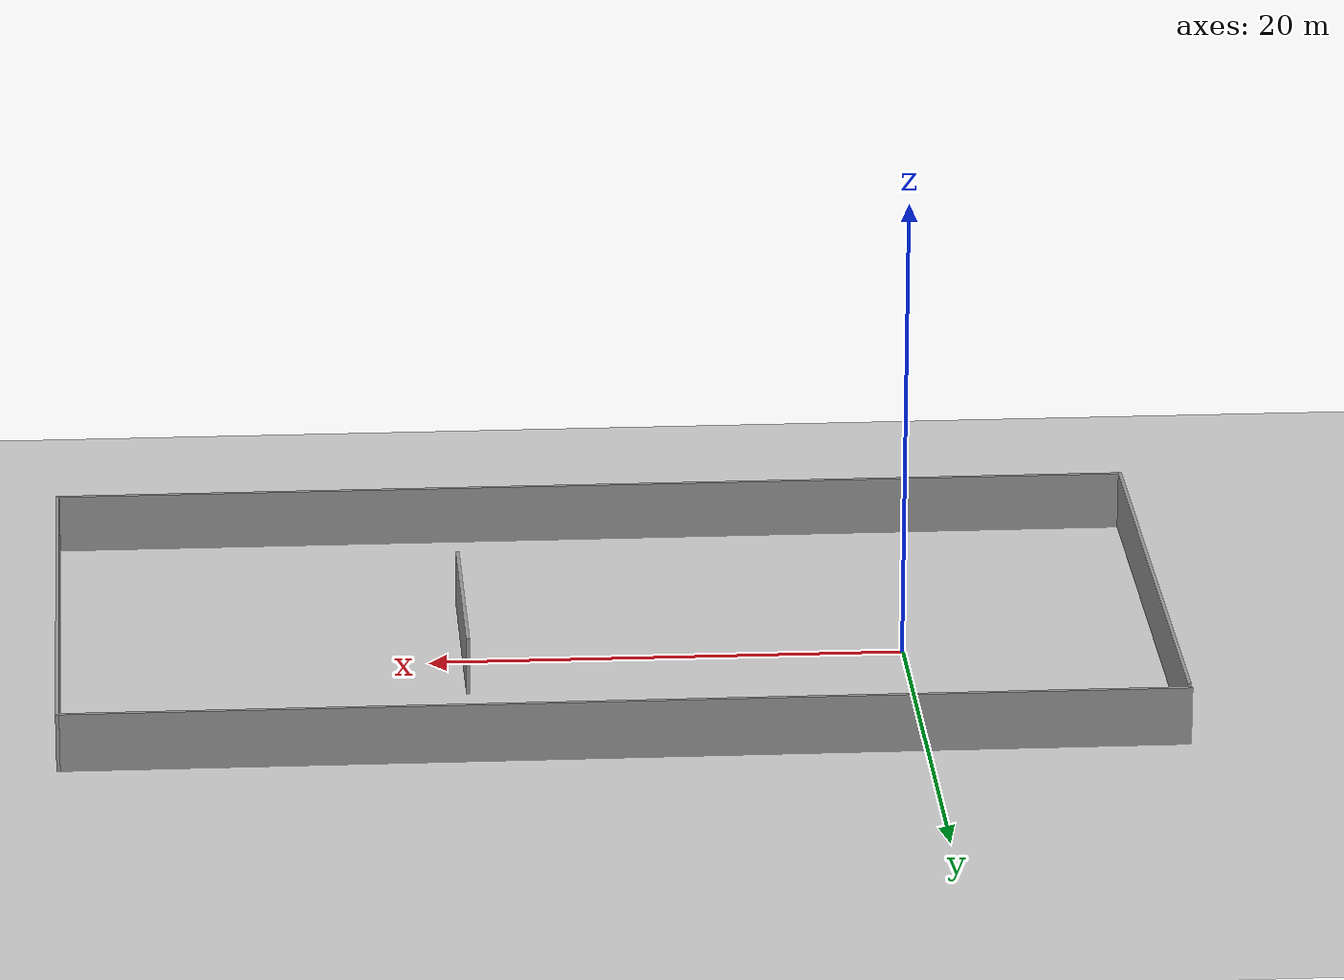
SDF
<sdf version="1.6">
 <world name="default">
  <light name="sun" type="directional">
   <pose>0 0 10 0 -0 0</pose>
   <diffuse>0.8 0.8 0.8 1</diffuse>
   <specular>0.1 0.1 0.1 1</specular>
   <attenuation>
    <range>1000</range>
    <constant>0.9</constant>
    <linear>0.01</linear>
    <quadratic>0.001</quadratic>
   </attenuation>
   <direction>-0.5 0.5 -1</direction>
  </light>
  <model name="ground_plane">
   <static>1</static>
   <link name="link">
    <collision name="collision">
     <geometry><plane><normal>0 0 1</normal><size>100 100</size></plane></geometry>
     <surface><friction><ode><mu>100</mu><mu2>50</mu2></ode></friction></surface>
    </collision>
    <visual name="visual">
     <cast_shadows>0</cast_shadows>
     <geometry><plane><normal>0 0 1</normal><size>100 100</size></plane></geometry>
     <material>
      <script><uri>file://media/materials/scripts/gazebo.material</uri><name>Gazebo/Grey</name></script>
     </material>
    </visual>
   </link>
  </model>
  <gravity>0 0 -9.8</gravity>
  <magnetic_field>6e-06 2.3e-05 -4.2e-05</magnetic_field>
  <atmosphere type="adiabatic"/>
  <physics name="default_physics" default="0" type="ode">
   <max_step_size>0.001</max_step_size>
   <real_time_factor>1</real_time_factor>
   <real_time_update_rate>1000</real_time_update_rate>
  </physics>
  <scene><ambient>0.4 0.4 0.4 1</ambient><background>0.7 0.7 0.7 1</background><shadows>1</shadows></scene>
  <spherical_coordinates>
   <surface_model>EARTH_WGS84</surface_model>
   <latitude_deg>0</latitude_deg>
   <longitude_deg>0</longitude_deg>
   <elevation>0</elevation>
   <heading_deg>0</heading_deg>
  </spherical_coordinates>
  <model name="samll_room">
   <pose>12.384 -1.68766 0 0 -0 0</pose>
   <link name="Wall_0">
    <collision name="Wall_0_Collision">
     <geometry><box><size>24 0.15 2.5</size></box></geometry>
     <pose>0 0 1.25 0 -0 0</pose>
    </collision>
    <visual name="Wall_0_Visual">
     <pose>0 0 1.25 0 -0 0</pose>
     <geometry><box><size>24 0.15 2.5</size></box></geometry>
     <material>
      <script><uri>file://media/materials/scripts/gazebo.material</uri><name>Gazebo/Grey</name></script>
      <ambient>1 1 1 1</ambient>
     </material>
    </visual>
    <pose>-23.175 -0.25 0 0 0 -1.5708</pose>
   </link>
   <link name="Wall_1">
    <collision name="Wall_1_Collision">
     <geometry><box><size>46.5 0.15 2.5</size></box></geometry>
     <pose>0 0 1.25 0 -0 0</pose>
    </collision>
    <visual name="Wall_1_Visual">
     <pose>0 0 1.25 0 -0 0</pose>
     <geometry><box><size>46.5 0.15 2.5</size></box></geometry>
     <material>
      <script><uri>file://media/materials/scripts/gazebo.material</uri><name>Gazebo/Grey</name></script>
      <ambient>1 1 1 1</ambient>
     </material>
    </visual>
    <pose>0 -12.175 0 0 -0 0</pose>
   </link>
   <link name="Wall_2">
    <collision name="Wall_2_Collision">
     <geometry><box><size>24.5 0.15 2.5</size></box></geometry>
     <pose>0 0 1.25 0 -0 0</pose>
    </collision>
    <visual name="Wall_2_Visual">
     <pose>0 0 1.25 0 -0 0</pose>
     <geometry><box><size>24.5 0.15 2.5</size></box></geometry>
     <material>
      <script><uri>file://media/materials/scripts/gazebo.material</uri><name>Gazebo/Grey</name></script>
      <ambient>1 1 1 1</ambient>
     </material>
    </visual>
    <pose>23.175 0 0 0 -0 1.5708</pose>
   </link>
   <link name="Wall_3">
    <collision name="Wall_3_Collision">
     <geometry><box><size>46.5 0.15 2.5</size></box></geometry>
     <pose>0 0 1.25 0 -0 0</pose>
    </collision>
    <visual name="Wall_3_Visual">
     <pose>0 0 1.25 0 -0 0</pose>
     <geometry><box><size>46.5 0.15 2.5</size></box></geometry>
     <material>
      <script><uri>file://media/materials/scripts/gazebo.material</uri><name>Gazebo/Grey</name></script>
      <ambient>1 1 1 1</ambient>
     </material>
    </visual>
    <pose>0 12.175 0 0 -0 3.14159</pose>
   </link>
   <link name="Wall_9">
    <collision name="Wall_9_Collision">
     <geometry><box><size>9.75 0.15 2.5</size></box></geometry>
     <pose>0 0 1.25 0 -0 0</pose>
    </collision>
    <visual name="Wall_9_Visual">
     <pose>0 0 1.25 0 -0 0</pose>
     <geometry><box><size>9.75 0.15 2.5</size></box></geometry>
     <material>
      <script><uri>file://media/materials/scripts/gazebo.material</uri><name>Gazebo/Grey</name></script>
      <ambient>1 1 1 1</ambient>
     </material>
    </visual>
    <pose>6.13849 0.204603 0 0 -0 1.5708</pose>
   </link>
   <static>1</static>
  </model>
 </world>
</sdf>
